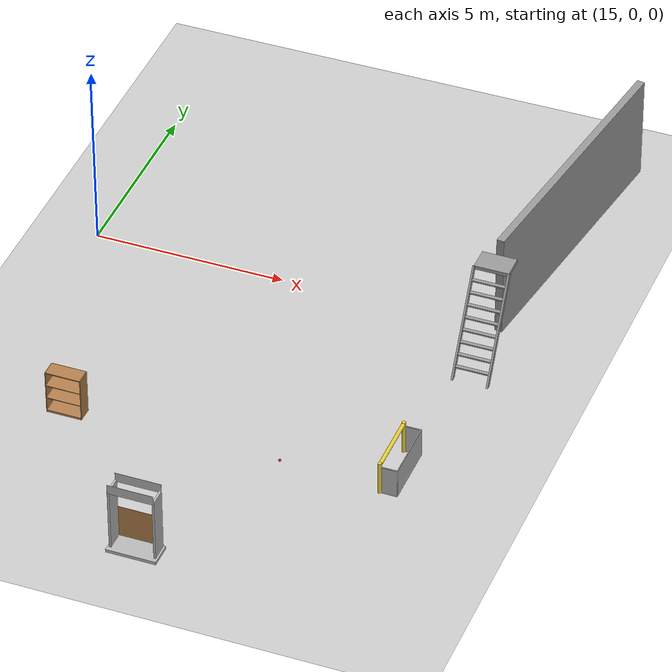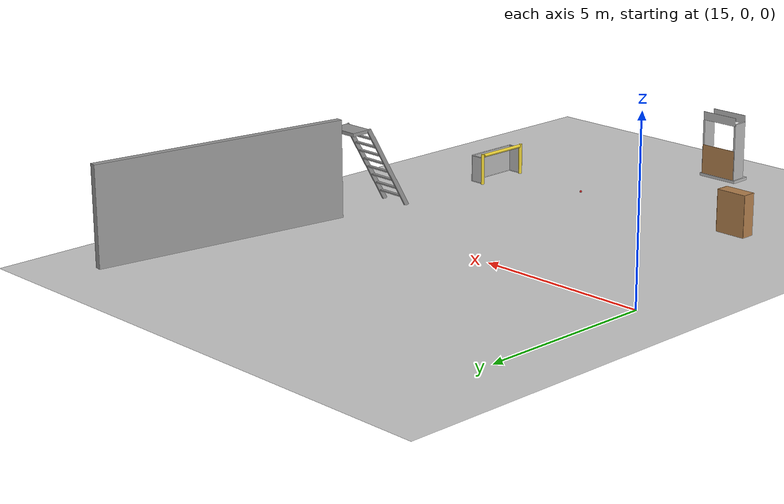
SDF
<sdf version="1.6">
 <world name="default">
  <light name="sun" type="directional">
   <pose>0 0 10 0 -0 0</pose>
   <diffuse>0.8 0.8 0.8 1</diffuse>
   <specular>0.2 0.2 0.2 1</specular>
   <attenuation>
    <range>1000</range>
    <constant>0.9</constant>
    <linear>0.01</linear>
    <quadratic>0.001</quadratic>
   </attenuation>
   <direction>-0.5 0.1 -0.9</direction>
  </light>
  <model name="ground_plane">
   <static>1</static>
   <link name="link">
    <collision name="collision">
     <geometry><plane><normal>0 0 1</normal><size>100 100</size></plane></geometry>
     <surface>
      <contact><collide_bitmask>65535</collide_bitmask></contact>
      <friction><ode><mu>100</mu><mu2>50</mu2></ode></friction>
     </surface>
    </collision>
    <visual name="visual">
     <cast_shadows>0</cast_shadows>
     <geometry><plane><normal>0 0 1</normal><size>100 100</size></plane></geometry>
     <material>
      <script><uri>file://media/materials/scripts/gazebo.material</uri><name>Gazebo/Grey</name></script>
     </material>
    </visual>
   </link>
  </model>
  <gravity>0 0 -9.8</gravity>
  <magnetic_field>6e-06 2.3e-05 -4.2e-05</magnetic_field>
  <atmosphere type="adiabatic"/>
  <physics name="default_physics" default="0" type="ode">
   <max_step_size>0.001</max_step_size>
   <real_time_factor>1</real_time_factor>
   <real_time_update_rate>1000</real_time_update_rate>
  </physics>
  <scene><ambient>0.4 0.4 0.4 1</ambient><background>0.7 0.7 0.7 1</background><shadows>1</shadows></scene>
  <audio><device>default</device></audio>
  <spherical_coordinates>
   <surface_model>EARTH_WGS84</surface_model>
   <latitude_deg>0</latitude_deg>
   <longitude_deg>0</longitude_deg>
   <elevation>0</elevation>
   <heading_deg>0</heading_deg>
  </spherical_coordinates>
  <model name="grey_wall">
   <static>1</static>
   <link name="link">
    <pose>0 0 1.4 0 -0 0</pose>
    <collision name="collision"><geometry><box><size>7.5 0.2 2.8</size></box></geometry></collision>
    <visual name="visual">
     <cast_shadows>0</cast_shadows>
     <geometry><box><size>7.5 0.2 2.8</size></box></geometry>
     <material>
      <script>
       <uri>model://grey_wall/materials/scripts</uri>
       <uri>model://grey_wall/materials/textures</uri>
       <name>vrc/grey_wall</name>
      </script>
     </material>
    </visual>
   </link>
   <pose>26.2029 3.76444 0 0 -0 1.42404</pose>
  </model>
  <model name="RoboCup 2014 SPL Goal">
   <static>1</static>
   <link name="left_post">
    <pose>0 0.8 0.45 0 -0 0</pose>
    <collision name="collision">
     <geometry><cylinder><radius>0.05</radius><length>0.9</length></cylinder></geometry>
    </collision>
    <visual name="visual">
     <geometry><cylinder><radius>0.05</radius><length>0.9</length></cylinder></geometry>
     <material>
      <script><uri>file://media/materials/scripts/gazebo.material</uri><name>Gazebo/ZincYellow</name></script>
     </material>
    </visual>
   </link>
   <link name="left_support_horiz_lower">
    <pose>0.24 0.8 0.01 0 -0 0</pose>
    <collision name="collision"><geometry><box><size>0.38 0.02 0.02</size></box></geometry></collision>
    <visual name="visual">
     <geometry><box><size>0.38 0.02 0.02</size></box></geometry>
     <material>
      <script><uri>file://media/materials/scripts/gazebo.material</uri><name>Gazebo/White</name></script>
     </material>
    </visual>
   </link>
   <link name="left_support_horiz_upper">
    <pose>0.24 0.8 0.79 0 -0 0</pose>
    <collision name="collision"><geometry><box><size>0.38 0.02 0.02</size></box></geometry></collision>
    <visual name="visual">
     <geometry><box><size>0.38 0.02 0.02</size></box></geometry>
     <material>
      <script><uri>file://media/materials/scripts/gazebo.material</uri><name>Gazebo/White</name></script>
     </material>
    </visual>
   </link>
   <link name="left_support_vertical">
    <pose>0.44 0.8 0.4 3.14159 1.57079 3.14159</pose>
    <collision name="collision"><geometry><box><size>0.8 0.02 0.02</size></box></geometry></collision>
    <visual name="visual">
     <geometry><box><size>0.8 0.02 0.02</size></box></geometry>
     <material>
      <script><uri>file://media/materials/scripts/gazebo.material</uri><name>Gazebo/White</name></script>
     </material>
    </visual>
   </link>
   <link name="right_support_horiz_lower">
    <pose>0.24 -0.8 0.01 0 -0 0</pose>
    <collision name="collision"><geometry><box><size>0.38 0.02 0.02</size></box></geometry></collision>
    <visual name="visual">
     <geometry><box><size>0.38 0.02 0.02</size></box></geometry>
     <material>
      <script><uri>file://media/materials/scripts/gazebo.material</uri><name>Gazebo/White</name></script>
     </material>
    </visual>
   </link>
   <link name="right_support_horiz_upper">
    <pose>0.24 -0.8 0.79 0 -0 0</pose>
    <collision name="collision"><geometry><box><size>0.38 0.02 0.02</size></box></geometry></collision>
    <visual name="visual">
     <geometry><box><size>0.38 0.02 0.02</size></box></geometry>
     <material>
      <script><uri>file://media/materials/scripts/gazebo.material</uri><name>Gazebo/White</name></script>
     </material>
    </visual>
   </link>
   <link name="right_support_vertical">
    <pose>0.44 -0.8 0.4 3.14159 1.57079 3.14159</pose>
    <collision name="collision"><geometry><box><size>0.8 0.02 0.02</size></box></geometry></collision>
    <visual name="visual">
     <geometry><box><size>0.8 0.02 0.02</size></box></geometry>
     <material>
      <script><uri>file://media/materials/scripts/gazebo.material</uri><name>Gazebo/White</name></script>
     </material>
    </visual>
   </link>
   <link name="center_support_horiz_lower">
    <pose>0.44 0 0.01 3.14159 1.57079 3.14159</pose>
    <collision name="collision"><geometry><box><size>0.02 1.58 0.02</size></box></geometry></collision>
    <visual name="visual">
     <geometry><box><size>0.02 1.58 0.02</size></box></geometry>
     <material>
      <script><uri>file://media/materials/scripts/gazebo.material</uri><name>Gazebo/White</name></script>
     </material>
    </visual>
   </link>
   <link name="center_support_horiz_upper">
    <pose>0.44 0 0.79 3.14159 1.57079 3.14159</pose>
    <collision name="collision"><geometry><box><size>0.02 1.58 0.02</size></box></geometry></collision>
    <visual name="visual">
     <geometry><box><size>0.02 1.58 0.02</size></box></geometry>
     <material>
      <script><uri>file://media/materials/scripts/gazebo.material</uri><name>Gazebo/White</name></script>
     </material>
    </visual>
   </link>
   <link name="right_post">
    <pose>0 -0.8 0.45 0 -0 0</pose>
    <collision name="collision">
     <geometry><cylinder><radius>0.05</radius><length>0.9</length></cylinder></geometry>
    </collision>
    <visual name="visual">
     <geometry><cylinder><radius>0.05</radius><length>0.9</length></cylinder></geometry>
     <material>
      <script><uri>file://media/materials/scripts/gazebo.material</uri><name>Gazebo/ZincYellow</name></script>
     </material>
    </visual>
   </link>
   <link name="crossbar">
    <pose>0 0 0.85 1.57 1.57 0</pose>
    <collision name="collision">
     <geometry><cylinder><radius>0.05</radius><length>1.5</length></cylinder></geometry>
    </collision>
    <visual name="visual">
     <geometry><cylinder><radius>0.05</radius><length>1.5</length></cylinder></geometry>
     <material>
      <script><uri>file://media/materials/scripts/gazebo.material</uri><name>Gazebo/ZincYellow</name></script>
     </material>
    </visual>
   </link>
   <link name="center_net">
    <pose>0.44 0 0.4 0 -0 0</pose>
    <collision name="collision"><geometry><box><size>0.01 1.6 0.8</size></box></geometry></collision>
    <visual name="visual">
     <geometry><box><size>0.01 1.6 0.8</size></box></geometry>
     <material>
      <script>
       <uri>model://robocup09_spl_field/materials/scripts/</uri>
       <uri>model://robocup09_spl_field/materials/textures/</uri>
       <name>RoboCup/Net</name>
      </script>
     </material>
    </visual>
   </link>
   <link name="left_net">
    <pose>0.24 0.8 0.4 0 -0 0</pose>
    <collision name="collision"><geometry><box><size>0.38 0.01 0.76</size></box></geometry></collision>
    <visual name="visual">
     <geometry><box><size>0.38 0.01 0.76</size></box></geometry>
     <material>
      <script>
       <uri>model://robocup09_spl_field/materials/scripts/</uri>
       <uri>model://robocup09_spl_field/materials/textures/</uri>
       <name>RoboCup/Net</name>
      </script>
     </material>
    </visual>
   </link>
   <link name="right_net">
    <pose>0.24 -0.8 0.4 0 -0 0</pose>
    <collision name="collision"><geometry><box><size>0.38 0.01 0.76</size></box></geometry></collision>
    <visual name="visual">
     <geometry><box><size>0.38 0.01 0.76</size></box></geometry>
     <material>
      <script>
       <uri>model://robocup09_spl_field/materials/scripts/</uri>
       <uri>model://robocup09_spl_field/materials/textures/</uri>
       <name>RoboCup/Net</name>
      </script>
     </material>
    </visual>
   </link>
   <pose>25.0961 -5.81235 0 0 -0 0</pose>
  </model>
  <model name="RoboCup SPL Ball">
   <static>0</static>
   <link name="ball">
    <inertial>
     <mass>0.0056</mass>
     <inertia>
      <ixx>2.37e-06</ixx>
      <iyy>2.37e-06</iyy>
      <izz>2.37e-06</izz>
      <ixy>0</ixy>
      <ixz>0</ixz>
      <iyz>0</iyz>
     </inertia>
    </inertial>
    <collision name="collision"><geometry><sphere><radius>0.0325</radius></sphere></geometry></collision>
    <visual name="visual">
     <geometry><sphere><radius>0.0325</radius></sphere></geometry>
     <material>
      <script><uri>file://media/materials/scripts/gazebo.material</uri><name>Gazebo/RedBright</name></script>
     </material>
    </visual>
   </link>
   <pose>22.4974 -6.41512 0.0325 0 -0 0</pose>
  </model>
  <model name="ladder_60deg_0rails">
   <static>1</static>
   <link name="step0">
    <pose>0 0.15396 0.266667 0 -0 0</pose>
    <inertial>
     <mass>9.75482</mass>
     <inertia>
      <ixx>0.00957124</ixx>
      <iyy>0.65963</iyy>
      <izz>0.666842</izz>
      <ixy>0</ixy>
      <ixz>0</ixz>
      <iyz>0</iyz>
     </inertia>
    </inertial>
    <collision name="collision"><geometry><box><size>0.9 0.1016 0.0381</size></box></geometry></collision>
    <visual name="visual">
     <geometry><box><size>0.9 0.1016 0.0381</size></box></geometry>
     <material>
      <script><uri>file://media/materials/scripts/gazebo.material</uri><name>Gazebo/Grey</name></script>
     </material>
    </visual>
   </link>
   <link name="step1">
    <pose>0 0.30792 0.533333 0 -0 0</pose>
    <inertial>
     <mass>9.75482</mass>
     <inertia>
      <ixx>0.00957124</ixx>
      <iyy>0.65963</iyy>
      <izz>0.666842</izz>
      <ixy>0</ixy>
      <ixz>0</ixz>
      <iyz>0</iyz>
     </inertia>
    </inertial>
    <collision name="collision"><geometry><box><size>0.9 0.1016 0.0381</size></box></geometry></collision>
    <visual name="visual">
     <geometry><box><size>0.9 0.1016 0.0381</size></box></geometry>
     <material>
      <script><uri>file://media/materials/scripts/gazebo.material</uri><name>Gazebo/Grey</name></script>
     </material>
    </visual>
   </link>
   <link name="step2">
    <pose>0 0.46188 0.8 0 -0 0</pose>
    <inertial>
     <mass>9.75482</mass>
     <inertia>
      <ixx>0.00957124</ixx>
      <iyy>0.65963</iyy>
      <izz>0.666842</izz>
      <ixy>0</ixy>
      <ixz>0</ixz>
      <iyz>0</iyz>
     </inertia>
    </inertial>
    <collision name="collision"><geometry><box><size>0.9 0.1016 0.0381</size></box></geometry></collision>
    <visual name="visual">
     <geometry><box><size>0.9 0.1016 0.0381</size></box></geometry>
     <material>
      <script><uri>file://media/materials/scripts/gazebo.material</uri><name>Gazebo/Grey</name></script>
     </material>
    </visual>
   </link>
   <link name="step3">
    <pose>0 0.61584 1.06667 0 -0 0</pose>
    <inertial>
     <mass>9.75482</mass>
     <inertia>
      <ixx>0.00957124</ixx>
      <iyy>0.65963</iyy>
      <izz>0.666842</izz>
      <ixy>0</ixy>
      <ixz>0</ixz>
      <iyz>0</iyz>
     </inertia>
    </inertial>
    <collision name="collision"><geometry><box><size>0.9 0.1016 0.0381</size></box></geometry></collision>
    <visual name="visual">
     <geometry><box><size>0.9 0.1016 0.0381</size></box></geometry>
     <material>
      <script><uri>file://media/materials/scripts/gazebo.material</uri><name>Gazebo/Grey</name></script>
     </material>
    </visual>
   </link>
   <link name="step4">
    <pose>0 0.7698 1.33333 0 -0 0</pose>
    <inertial>
     <mass>9.75482</mass>
     <inertia>
      <ixx>0.00957124</ixx>
      <iyy>0.65963</iyy>
      <izz>0.666842</izz>
      <ixy>0</ixy>
      <ixz>0</ixz>
      <iyz>0</iyz>
     </inertia>
    </inertial>
    <collision name="collision"><geometry><box><size>0.9 0.1016 0.0381</size></box></geometry></collision>
    <visual name="visual">
     <geometry><box><size>0.9 0.1016 0.0381</size></box></geometry>
     <material>
      <script><uri>file://media/materials/scripts/gazebo.material</uri><name>Gazebo/Grey</name></script>
     </material>
    </visual>
   </link>
   <link name="step5">
    <pose>0 0.92376 1.6 0 -0 0</pose>
    <inertial>
     <mass>9.75482</mass>
     <inertia>
      <ixx>0.00957124</ixx>
      <iyy>0.65963</iyy>
      <izz>0.666842</izz>
      <ixy>0</ixy>
      <ixz>0</ixz>
      <iyz>0</iyz>
     </inertia>
    </inertial>
    <collision name="collision"><geometry><box><size>0.9 0.1016 0.0381</size></box></geometry></collision>
    <visual name="visual">
     <geometry><box><size>0.9 0.1016 0.0381</size></box></geometry>
     <material>
      <script><uri>file://media/materials/scripts/gazebo.material</uri><name>Gazebo/Grey</name></script>
     </material>
    </visual>
   </link>
   <link name="step6">
    <pose>0 1.07772 1.86667 0 -0 0</pose>
    <inertial>
     <mass>9.75482</mass>
     <inertia>
      <ixx>0.00957124</ixx>
      <iyy>0.65963</iyy>
      <izz>0.666842</izz>
      <ixy>0</ixy>
      <ixz>0</ixz>
      <iyz>0</iyz>
     </inertia>
    </inertial>
    <collision name="collision"><geometry><box><size>0.9 0.1016 0.0381</size></box></geometry></collision>
    <visual name="visual">
     <geometry><box><size>0.9 0.1016 0.0381</size></box></geometry>
     <material>
      <script><uri>file://media/materials/scripts/gazebo.material</uri><name>Gazebo/Grey</name></script>
     </material>
    </visual>
   </link>
   <link name="step7">
    <pose>0 1.23168 2.13333 0 -0 0</pose>
    <inertial>
     <mass>9.75482</mass>
     <inertia>
      <ixx>0.00957124</ixx>
      <iyy>0.65963</iyy>
      <izz>0.666842</izz>
      <ixy>0</ixy>
      <ixz>0</ixz>
      <iyz>0</iyz>
     </inertia>
    </inertial>
    <collision name="collision"><geometry><box><size>0.9 0.1016 0.0381</size></box></geometry></collision>
    <visual name="visual">
     <geometry><box><size>0.9 0.1016 0.0381</size></box></geometry>
     <material>
      <script><uri>file://media/materials/scripts/gazebo.material</uri><name>Gazebo/Grey</name></script>
     </material>
    </visual>
   </link>
   <link name="landing">
    <pose>0 1.68564 2.4 0 -0 0</pose>
    <inertial>
     <mass>57.6072</mass>
     <inertia><ixx>1.73518</ixx><iyy>3.89545</iyy><izz>5.6167</izz><ixy>0</ixy><ixz>0</ixz><iyz>0</iyz></inertia>
    </inertial>
    <collision name="collision"><geometry><box><size>0.9 0.6 0.1016</size></box></geometry></collision>
    <visual name="visual">
     <geometry><box><size>0.9 0.6 0.1016</size></box></geometry>
     <material>
      <script><uri>file://media/materials/scripts/gazebo.material</uri><name>Gazebo/Grey</name></script>
     </material>
    </visual>
   </link>
   <link name="left_side_wall">
    <pose>-0.45 0.69282 1.2 1.0472 -0 0</pose>
    <collision name="collision"><geometry><box><size>0.0508 2.85128 0.13</size></box></geometry></collision>
    <visual name="visual">
     <geometry><box><size>0.0508 2.85128 0.13</size></box></geometry>
     <material>
      <script><uri>file://media/materials/scripts/gazebo.material</uri><name>Gazebo/Grey</name></script>
     </material>
    </visual>
   </link>
   <link name="right_side_wall">
    <pose>0.45 0.69282 1.2 1.0472 -0 0</pose>
    <collision name="collision"><geometry><box><size>0.0508 2.85128 0.13</size></box></geometry></collision>
    <visual name="visual">
     <geometry><box><size>0.0508 2.85128 0.13</size></box></geometry>
     <material>
      <script><uri>file://media/materials/scripts/gazebo.material</uri><name>Gazebo/Grey</name></script>
     </material>
    </visual>
   </link>
   <pose>25.6918 -2.05316 0 0 -0 0</pose>
  </model>
  <model name="frc2016_drawbridge">
   <link name="base">
    <inertial>
     <mass>10</mass>
     <pose>0 0 1 0 -0 0</pose>
     <inertia><ixx>3.64907</ixx><ixy>0</ixy><ixz>0</ixz><iyy>4.67075</iyy><iyz>0</iyz><izz>1.66649</izz></inertia>
    </inertial>
    <visual name="platform">
     <pose>0 0 0.0425 0 -0 0</pose>
     <geometry><box><size>1.27 0.5969 0.085</size></box></geometry>
    </visual>
    <collision name="platform">
     <pose>0 0 0.0425 0 -0 0</pose>
     <geometry><box><size>1.27 0.5969 0.085</size></box></geometry>
    </collision>
    <visual name="right_wall">
     <pose>0.55879 0.04444 0.889 0 -0 0</pose>
     <geometry><box><size>0.05715 0.45698 1.77165</size></box></geometry>
    </visual>
    <collision name="right_wall">
     <pose>0.55879 0.04444 0.889 0 -0 0</pose>
     <geometry><box><size>0.05715 0.45698 1.77165</size></box></geometry>
    </collision>
    <visual name="left_wall">
     <pose>-0.55879 0.04444 0.889 0 -0 0</pose>
     <geometry><box><size>0.05715 0.45698 1.77165</size></box></geometry>
    </visual>
    <collision name="left_wall">
     <pose>-0.55879 0.04444 0.889 0 -0 0</pose>
     <geometry><box><size>0.05715 0.45698 1.77165</size></box></geometry>
    </collision>
    <visual name="front_upper_wall">
     <pose>0 0.27611 1.84286 0 -0 0</pose>
     <geometry><box><size>1.1557 0.006347 0.254</size></box></geometry>
    </visual>
    <collision name="front_upper_wall">
     <pose>0 0.27611 1.84286 0 -0 0</pose>
     <geometry><box><size>1.1557 0.006347 0.254</size></box></geometry>
    </collision>
    <visual name="back_upper_wall">
     <pose>0 -0.18722 1.84286 0 -0 0</pose>
     <geometry><box><size>1.1557 0.006347 0.254</size></box></geometry>
    </visual>
    <collision name="back_upper_wall">
     <pose>0 -0.18722 1.84286 0 -0 0</pose>
     <geometry><box><size>1.1557 0.006347 0.254</size></box></geometry>
    </collision>
   </link>
   <link name="bridge">
    <pose>0 0.28245 0.50577 0 -0 0</pose>
    <inertial>
     <mass>2</mass>
     <pose>0 -0.28245 -0.50577 0 -0 0</pose>
     <inertia>
      <ixx>0.139361</ixx>
      <ixy>0</ixy>
      <ixz>0</ixz>
      <iyy>0.357088</iyy>
      <iyz>0</iyz>
      <izz>0.217741</izz>
     </inertia>
    </inertial>
    <visual name="visual">
     <geometry><box><size>1.14298 0.006347 0.9144</size></box></geometry>
     <material><script><name>Gazebo/WoodFloor</name><uri>__default__</uri></script></material>
    </visual>
    <collision name="collision"><geometry><box><size>1.14298 0.006347 0.9144</size></box></geometry></collision>
   </link>
   <joint name="bridge_joint" type="revolute">
    <pose>0 0 -0.4172 0 -0 0</pose>
    <parent>base</parent>
    <child>bridge</child>
    <axis>
     <xyz>1 0 0</xyz>
     <limit><lower>-2</lower><upper>0</upper></limit>
     <use_parent_model_frame>0</use_parent_model_frame>
     <dynamics><spring_reference>0</spring_reference><spring_stiffness>0</spring_stiffness></dynamics>
    </axis>
   </joint>
   <pose>20.5635 -10.5658 0 0 -0 0.001661</pose>
  </model>
  <model name="bookshelf">
   <static>1</static>
   <link name="link">
    <inertial><mass>1</mass></inertial>
    <collision name="back">
     <pose>0 0.005 0.6 0 -0 0</pose>
     <geometry><box><size>0.9 0.01 1.2</size></box></geometry>
    </collision>
    <visual name="visual1">
     <pose>0 0.005 0.6 0 -0 0</pose>
     <geometry><box><size>0.9 0.01 1.2</size></box></geometry>
     <material>
      <script><uri>file://media/materials/scripts/gazebo.material</uri><name>Gazebo/Wood</name></script>
     </material>
    </visual>
    <collision name="left_side">
     <pose>0.45 -0.195 0.6 0 -0 0</pose>
     <geometry><box><size>0.02 0.4 1.2</size></box></geometry>
    </collision>
    <visual name="visual2">
     <pose>0.45 -0.195 0.6 0 -0 0</pose>
     <geometry><box><size>0.02 0.4 1.2</size></box></geometry>
     <material>
      <script><uri>file://media/materials/scripts/gazebo.material</uri><name>Gazebo/Wood</name></script>
     </material>
    </visual>
    <collision name="right_side">
     <pose>-0.45 -0.195 0.6 0 -0 0</pose>
     <geometry><box><size>0.02 0.4 1.2</size></box></geometry>
    </collision>
    <visual name="visual3">
     <pose>-0.45 -0.195 0.6 0 -0 0</pose>
     <geometry><box><size>0.02 0.4 1.2</size></box></geometry>
     <material>
      <script><uri>file://media/materials/scripts/gazebo.material</uri><name>Gazebo/Wood</name></script>
     </material>
    </visual>
    <collision name="bottom">
     <pose>0 -0.195 0.03 0 -0 0</pose>
     <geometry><box><size>0.88 0.4 0.06</size></box></geometry>
    </collision>
    <visual name="visual4">
     <pose>0 -0.195 0.03 0 -0 0</pose>
     <geometry><box><size>0.88 0.4 0.06</size></box></geometry>
     <material>
      <script><uri>file://media/materials/scripts/gazebo.material</uri><name>Gazebo/Wood</name></script>
     </material>
    </visual>
    <collision name="top">
     <pose>0 -0.195 1.19 0 -0 0</pose>
     <geometry><box><size>0.88 0.4 0.02</size></box></geometry>
    </collision>
    <visual name="visual5">
     <pose>0 -0.195 1.19 0 -0 0</pose>
     <geometry><box><size>0.88 0.4 0.02</size></box></geometry>
     <material>
      <script><uri>file://media/materials/scripts/gazebo.material</uri><name>Gazebo/Wood</name></script>
     </material>
    </visual>
    <collision name="low_shelf">
     <pose>0 -0.195 0.43 0 -0 0</pose>
     <geometry><box><size>0.88 0.4 0.02</size></box></geometry>
    </collision>
    <visual name="visual6">
     <pose>0 -0.195 0.43 0 -0 0</pose>
     <geometry><box><size>0.88 0.4 0.02</size></box></geometry>
     <material>
      <script><uri>file://media/materials/scripts/gazebo.material</uri><name>Gazebo/Wood</name></script>
     </material>
    </visual>
    <collision name="high_shelf">
     <pose>0 -0.195 0.8 0 -0 0</pose>
     <geometry><box><size>0.88 0.4 0.02</size></box></geometry>
    </collision>
    <visual name="visual7">
     <pose>0 -0.195 0.8 0 -0 0</pose>
     <geometry><box><size>0.88 0.4 0.02</size></box></geometry>
     <material>
      <script><uri>file://media/materials/scripts/gazebo.material</uri><name>Gazebo/Wood</name></script>
     </material>
    </visual>
   </link>
   <pose>17.0574 -6.33836 0 0 -0 0</pose>
  </model>
 </world>
</sdf>
